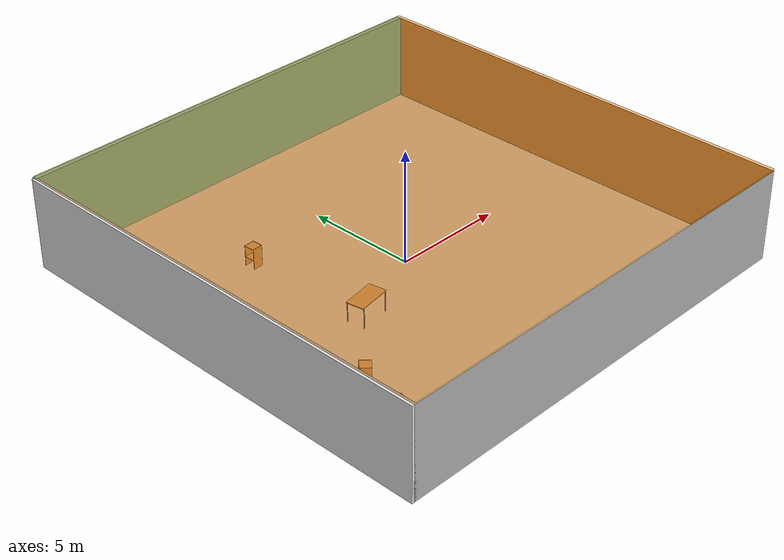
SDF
<sdf version="1.4">
 <world name="default">
  <physics type="ode">
   <max_step_size>0.001</max_step_size>
   <real_time_factor>1</real_time_factor>
   <real_time_update_rate>1000</real_time_update_rate>
   <gravity>0 0 -9.8</gravity>
  </physics>
  <scene><ambient>0.4 0.4 0.4 1</ambient><background>0.7 0.7 0.7 1</background><shadows>1</shadows></scene>
  <model name="Surrounding">
   <static>1</static>
   <link name="Ceiling">
    <collision name="Ceiling_Collision"><geometry><box><size>20 20 0.1</size></box></geometry></collision>
    <visual name="Ceiling_Visual">
     <geometry><box><size>20 20 0.1</size></box></geometry>
     <material>
      <script>
       <uri>file://media/materials/scripts/gazebo.material</uri>
       <name>Gazebo/OrangeTransparent</name>
      </script>
     </material>
    </visual>
    <pose>0 0 4.05 0 0 0</pose>
   </link>
   <link name="Wall_South">
    <collision name="Wall_South_Collision">
     <geometry><box><size>20 0 4</size></box></geometry>
     <pose>0 0 2 0 -0 0</pose>
    </collision>
    <visual name="Wall_South_Visual">
     <pose>0 0 2 0 -0 0</pose>
     <geometry><box><size>20 0 4</size></box></geometry>
     <material>
      <script><uri>file://media/materials/scripts/gazebo.material</uri><name>Gazebo/LightOff</name></script>
     </material>
    </visual>
    <velocity_decay><linear>0</linear><angular>0</angular></velocity_decay>
    <pose>0 -10 0 0 -0 0</pose>
   </link>
   <link name="Wall_East">
    <collision name="Wall_21_Collision">
     <geometry><box><size>20 0 4</size></box></geometry>
     <pose>0 0 2 0 -0 0</pose>
    </collision>
    <visual name="Wall_21_Visual">
     <pose>0 0 2 0 -0 0</pose>
     <geometry><box><size>20 0 4</size></box></geometry>
     <material>
      <script><uri>file://media/materials/scripts/gazebo.material</uri><name>Gazebo/WoodFloor</name></script>
     </material>
    </visual>
    <velocity_decay><linear>0</linear><angular>0</angular></velocity_decay>
    <pose>10 0 0 0 -0 1.5708</pose>
   </link>
   <link name="Wall_North">
    <collision name="Wall_22_Collision">
     <geometry><box><size>20 0.2 4</size></box></geometry>
     <pose>0 0 2 0 -0 0</pose>
    </collision>
    <visual name="Wall_22_Visual">
     <pose>0 0 2 0 -0 0</pose>
     <geometry><box><size>20 0.2 4</size></box></geometry>
     <material>
      <script><uri>file://media/materials/scripts/gazebo.material</uri><name>Gazebo/TurquoiseGlow</name></script>
     </material>
    </visual>
    <velocity_decay><linear>0</linear><angular>0</angular></velocity_decay>
    <pose>0 10 0 0 -0 0</pose>
   </link>
   <link name="Wall_West">
    <collision name="Wall_23_Collision">
     <geometry><box><size>20 0.2 4</size></box></geometry>
     <pose>0 0 2 0 -0 0</pose>
    </collision>
    <visual name="Wall_23_Visual">
     <pose>0 0 2 0 -0 0</pose>
     <geometry><box><size>20 0.2 4</size></box></geometry>
     <material>
      <script><uri>file://media/materials/scripts/gazebo.material</uri><name>Gazebo/WhiteGlow</name></script>
     </material>
    </visual>
    <velocity_decay><linear>0</linear><angular>0</angular></velocity_decay>
    <pose>-10 0 0 0 0 -1.5708</pose>
   </link>
   <link name="Ground_link">
    <collision name="collision">
     <pose>0 0 .05 0 -0 0</pose>
     <geometry><box><size>20 20 0.1</size></box></geometry>
    </collision>
    <visual name="visual">
     <pose>0 0 .05 0 -0 0</pose>
     <geometry><box><size>20 20 0.1</size></box></geometry>
     <material>
      <script><uri>file://media/materials/scripts/gazebo.material</uri><name>Gazebo/LightOn</name></script>
     </material>
    </visual>
   </link>
   <static>1</static>
  </model>
  <spherical_coordinates>
   <surface_model>EARTH_WGS84</surface_model>
   <latitude_deg>0</latitude_deg>
   <longitude_deg>0</longitude_deg>
   <elevation>0</elevation>
   <heading_deg>0</heading_deg>
  </spherical_coordinates>
  <light name="lightball_0" type="diffuse">
   <diffuse>0.8 0.8 0.8 1</diffuse>
   <specular>0.2 0.2 0.2 1</specular>
   <attenuation>
    <range>100</range>
    <constant>0.7</constant>
    <linear>0.01</linear>
    <quadratic>0.001</quadratic>
   </attenuation>
   <direction>-0.5 0.1 -0.9</direction>
   <pose>3.27107032859 -3.34126289857 2.08092487762 0 0 0</pose>
  </light>
  <light name="lightball_1" type="diffuse">
   <diffuse>0.8 0.8 0.8 1</diffuse>
   <specular>0.2 0.2 0.2 1</specular>
   <attenuation>
    <range>100</range>
    <constant>0.7</constant>
    <linear>0.01</linear>
    <quadratic>0.001</quadratic>
   </attenuation>
   <direction>-0.5 0.1 -0.9</direction>
   <pose>5.1403428984 -5.96462876285 1.20205760815 0 0 0</pose>
  </light>
  <light name="lightball_2" type="diffuse">
   <diffuse>0.8 0.8 0.8 1</diffuse>
   <specular>0.2 0.2 0.2 1</specular>
   <attenuation>
    <range>100</range>
    <constant>0.7</constant>
    <linear>0.01</linear>
    <quadratic>0.001</quadratic>
   </attenuation>
   <direction>-0.5 0.1 -0.9</direction>
   <pose>0.674702484979 -6.5040809748 1.09217691665 0 0 0</pose>
  </light>
  <light name="lightball_3" type="diffuse">
   <diffuse>0.8 0.8 0.8 1</diffuse>
   <specular>0.2 0.2 0.2 1</specular>
   <attenuation>
    <range>100</range>
    <constant>0.7</constant>
    <linear>0.01</linear>
    <quadratic>0.001</quadratic>
   </attenuation>
   <direction>-0.5 0.1 -0.9</direction>
   <pose>-1.88984881082 5.92868912361 2.50381351939 0 0 0</pose>
  </light>
  <light name="lightball_4" type="diffuse">
   <diffuse>0.8 0.8 0.8 1</diffuse>
   <specular>0.2 0.2 0.2 1</specular>
   <attenuation>
    <range>100</range>
    <constant>0.7</constant>
    <linear>0.01</linear>
    <quadratic>0.001</quadratic>
   </attenuation>
   <direction>-0.5 0.1 -0.9</direction>
   <pose>8.05322498278 -2.70794274231 0.832459263346 0 0 0</pose>
  </light>
  <light name="lightball_5" type="diffuse">
   <diffuse>0.8 0.8 0.8 1</diffuse>
   <specular>0.2 0.2 0.2 1</specular>
   <attenuation>
    <range>100</range>
    <constant>0.7</constant>
    <linear>0.01</linear>
    <quadratic>0.001</quadratic>
   </attenuation>
   <direction>-0.5 0.1 -0.9</direction>
   <pose>-2.01543471678 4.44960720728 1.36923159094 0 0 0</pose>
  </light>
  <light name="lightball_6" type="diffuse">
   <diffuse>0.8 0.8 0.8 1</diffuse>
   <specular>0.2 0.2 0.2 1</specular>
   <attenuation>
    <range>100</range>
    <constant>0.7</constant>
    <linear>0.01</linear>
    <quadratic>0.001</quadratic>
   </attenuation>
   <direction>-0.5 0.1 -0.9</direction>
   <pose>-1.17576564847 -6.93981792661 0.569131632618 0 0 0</pose>
  </light>
  <light name="lightball_7" type="diffuse">
   <diffuse>0.8 0.8 0.8 1</diffuse>
   <specular>0.2 0.2 0.2 1</specular>
   <attenuation>
    <range>100</range>
    <constant>0.7</constant>
    <linear>0.01</linear>
    <quadratic>0.001</quadratic>
   </attenuation>
   <direction>-0.5 0.1 -0.9</direction>
   <pose>7.60991792515 -1.24487426117 2.74047371016 0 0 0</pose>
  </light>
  <light name="lightball_8" type="diffuse">
   <diffuse>0.8 0.8 0.8 1</diffuse>
   <specular>0.2 0.2 0.2 1</specular>
   <attenuation>
    <range>100</range>
    <constant>0.7</constant>
    <linear>0.01</linear>
    <quadratic>0.001</quadratic>
   </attenuation>
   <direction>-0.5 0.1 -0.9</direction>
   <pose>-0.523118024594 9.26440547546 1.95443001332 0 0 0</pose>
  </light>
  <light name="lightball_9" type="diffuse">
   <diffuse>0.8 0.8 0.8 1</diffuse>
   <specular>0.2 0.2 0.2 1</specular>
   <attenuation>
    <range>100</range>
    <constant>0.7</constant>
    <linear>0.01</linear>
    <quadratic>0.001</quadratic>
   </attenuation>
   <direction>-0.5 0.1 -0.9</direction>
   <pose>-6.95902537702 3.85031597815 2.09154971167 0 0 0</pose>
  </light>
  <include><uri>model://cabinet</uri><pose>-7.36255653244 -6.80469849678 0 0 0 2.94514957458</pose></include>
  <include><uri>model://cabinet</uri><pose>-6.77325791998 -4.56228859008 0 0 0 2.38078419107</pose></include>
  <include><uri>model://table</uri><pose>-3.77535186122 -1.60663420114 0 0 0 0.166245609362</pose></include>
  <include><uri>model://cabinet</uri><pose>-4.37594305243 4.0231657422 0 0 0 0.0436052006794</pose></include>
  <include>
   <uri>model://construction_cone</uri>
   <pose>-1.12692552248 -7.90933665313 0 0 0 0.886679334045</pose>
  </include>
  <include><uri>model://table</uri><pose>7.83281250739 -8.21557535606 0 0 0 2.07808488448</pose></include>
 </world>
</sdf>

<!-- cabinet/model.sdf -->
<sdf version="1.5">
  <model name="cabinet">
    <static>true</static>
    <link name="cabinet_bottom_plate">
      <inertial>
        <pose>0 0 -1 0 0 0</pose>
        <inertia>
          <ixx>2.050000</ixx>
          <ixy>0</ixy>
          <ixz>0</ixz>
          <iyy>2.050000</iyy>
          <iyz>0</iyz>
          <izz>2.050000</izz>
        </inertia>
        <mass>25.000000</mass>
      </inertial>
      <collision name="cabinet_bottom_plate_geom">
        <pose>0 0 0.010000 0 0 0</pose>
        <geometry>
          <box>
            <size>0.450000 0.450000 0.020000</size>
          </box>
        </geometry>
      </collision>
      <visual name="cabinet_bottom_plate_geom_visual">
        <pose>0 0 0.010000 0 0 0</pose>
        <geometry>
          <box>
            <size>0.450000 0.450000 0.020000</size>
          </box>
        </geometry>
        <material>
          <script>
            <uri>model://media/materials/scripts/gazebo.material</uri>
            <name>Gazebo/Wood</name>
          </script>
        </material>
      </visual>
      <collision name="cabinet_bottom_plate_geom_cabinet_back_plate">
        <pose>0.235000 0 0.510000 0 0 0</pose>
        <geometry>
          <box>
            <size>0.020000 0.450000 1.020000</size>
          </box>
        </geometry>
      </collision>
      <visual name="cabinet_bottom_plate_geom_cabinet_back_plate_visual">
        <pose>0.235000 0 0.510000 0 0 0</pose>
        <geometry>
          <box>
            <size>0.020000 0.450000 1.020000</size>
          </box>
        </geometry>
        <material>
          <script>
            <uri>model://media/materials/scripts/gazebo.material</uri>
            <name>Gazebo/Wood</name>
          </script>
        </material>
      </visual>
      <collision name="cabinet_bottom_plate_geom_cabinet_left_plate">
        <pose>0 0.235000 0.510000 0 0 0</pose>
        <geometry>
          <box>
            <size>0.450000 0.020000 1.020000</size>
          </box>
        </geometry>
      </collision>
      <visual name="cabinet_bottom_plate_geom_cabinet_left_plate_visual">
        <pose>0 0.235000 0.510000 0 0 0</pose>
        <geometry>
          <box>
            <size>0.450000 0.020000 1.020000</size>
          </box>
        </geometry>
        <material>
          <script>
            <uri>model://media/materials/scripts/gazebo.material</uri>
            <name>Gazebo/Wood</name>
          </script>
        </material>
      </visual>
      <collision name="cabinet_bottom_plate_geom_cabinet_middle_plate">
        <pose>0 0 0.510000 0 0 0</pose>
        <geometry>
          <box>
            <size>0.450000 0.450000 0.020000</size>
          </box>
        </geometry>
      </collision>
      <visual name="cabinet_bottom_plate_geom_cabinet_middle_plate_visual">
        <pose>0 0 0.510000 0 0 0</pose>
        <geometry>
          <box>
            <size>0.450000 0.450000 0.020000</size>
          </box>
        </geometry>
        <material>
          <script>
            <uri>model://media/materials/scripts/gazebo.material</uri>
            <name>Gazebo/Wood</name>
          </script>
        </material>
      </visual>
      <collision name="cabinet_bottom_plate_geom_cabinet_right_plate">
        <pose>0 -0.235000 0.510000 0 0 0</pose>
        <geometry>
          <box>
            <size>0.450000 0.020000 1.020000</size>
          </box>
        </geometry>
      </collision>
      <visual name="cabinet_bottom_plate_geom_cabinet_right_plate_visual">
        <pose>0 -0.235000 0.510000 0 0 0</pose>
        <geometry>
          <box>
            <size>0.450000 0.020000 1.020000</size>
          </box>
        </geometry>
        <material>
          <script>
            <uri>model://media/materials/scripts/gazebo.material</uri>
            <name>Gazebo/Wood</name>
          </script>
        </material>
      </visual>
      <collision name="cabinet_bottom_plate_geom_cabinet_top_plate">
        <pose>0 0 1.010000 0 0 0</pose>
        <geometry>
          <box>
            <size>0.450000 0.450000 0.020000</size>
          </box>
        </geometry>
      </collision>
      <visual name="cabinet_bottom_plate_geom_cabinet_top_plate_visual">
        <pose>0 0 1.010000 0 0 0</pose>
        <geometry>
          <box>
            <size>0.450000 0.450000 0.020000</size>
          </box>
        </geometry>
        <material>
          <script>
            <uri>model://media/materials/scripts/gazebo.material</uri>
            <name>Gazebo/Wood</name>
          </script>
        </material>
      </visual>
    </link>
  </model>
</sdf>

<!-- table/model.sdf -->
<sdf version="1.5">
  <model name="table">
    <static>true</static>
    <link name="link">
      <collision name="surface">
        <pose>0 0 1.0 0 0 0</pose>
        <geometry>
          <box>
            <size>1.5 0.8 0.03</size>
          </box>
        </geometry>
        <surface>
          <friction>
            <ode>
              <mu>0.6</mu>
              <mu2>0.6</mu2>
            </ode>
          </friction>
        </surface>
      </collision>
      <visual name="visual1">
        <pose>0 0 1.0 0 0 0</pose>
        <geometry>
          <box>
            <size>1.5 0.8 0.03</size>
          </box>
        </geometry>
        <material>
          <script>
            <uri>model://media/materials/scripts/gazebo.material</uri>
            <name>Gazebo/Wood</name>
          </script>
        </material>
      </visual>
      <collision name="front_left_leg">
        <pose>0.68 0.38 0.5 0 0 0</pose>
        <geometry>
          <cylinder>
            <radius>0.02</radius>
            <length>1.0</length>
          </cylinder>
        </geometry>
      </collision>
      <visual name="front_left_leg">
        <pose>0.68 0.38 0.5 0 0 0</pose>
        <geometry>
          <cylinder>
            <radius>0.02</radius>
            <length>1.0</length>
          </cylinder>
        </geometry>
        <material>
          <script>
            <uri>model://media/materials/scripts/gazebo.material</uri>
            <name>Gazebo/Grey</name>
          </script>
        </material>
      </visual>
      <collision name="front_right_leg">
        <pose>0.68 -0.38 0.5 0 0 0</pose>
        <geometry>
          <cylinder>
            <radius>0.02</radius>
            <length>1.0</length>
          </cylinder>
        </geometry>
      </collision>
      <visual name="front_right_leg">
        <pose>0.68 -0.38 0.5 0 0 0</pose>
        <geometry>
          <cylinder>
            <radius>0.02</radius>
            <length>1.0</length>
          </cylinder>
        </geometry>
        <material>
          <script>
            <uri>model://media/materials/scripts/gazebo.material</uri>
            <name>Gazebo/Grey</name>
          </script>
        </material>
      </visual>
      <collision name="back_right_leg">
        <pose>-0.68 -0.38 0.5 0 0 0</pose>
        <geometry>
          <cylinder>
            <radius>0.02</radius>
            <length>1.0</length>
          </cylinder>
        </geometry>
      </collision>
      <visual name="back_right_leg">
        <pose>-0.68 -0.38 0.5 0 0 0</pose>
        <geometry>
          <cylinder>
            <radius>0.02</radius>
            <length>1.0</length>
          </cylinder>
        </geometry>
        <material>
          <script>
            <uri>model://media/materials/scripts/gazebo.material</uri>
            <name>Gazebo/Grey</name>
          </script>
        </material>
      </visual>
      <collision name="back_left_leg">
        <pose>-0.68 0.38 0.5 0 0 0</pose>
        <geometry>
          <cylinder>
            <radius>0.02</radius>
            <length>1.0</length>
          </cylinder>
        </geometry>
      </collision>
      <visual name="back_left_leg">
        <pose>-0.68 0.38 0.5 0 0 0</pose>
        <geometry>
          <cylinder>
            <radius>0.02</radius>
            <length>1.0</length>
          </cylinder>
        </geometry>
        <material>
          <script>
            <uri>model://media/materials/scripts/gazebo.material</uri>
            <name>Gazebo/Grey</name>
          </script>
        </material>
      </visual>
    </link>
  </model>
</sdf>

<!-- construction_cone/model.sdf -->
<sdf version="1.5">
  <model name="Construction Cone">
    <link name="link">
      <collision name="collision">
        <geometry>
          <mesh>
            <scale>10 10 10</scale>
            <uri>file://isr-testbed/construction_cone/meshes/construction_cone.dae</uri>
          </mesh>
        </geometry>
      </collision>
      <visual name="visual">
        <geometry>
          <mesh>
            <scale>10 10 10</scale>
            <uri>file://isr-testbed/construction_cone/meshes/construction_cone.dae</uri>
          </mesh>
        </geometry>
      </visual>
    </link>
  </model>
</sdf>
